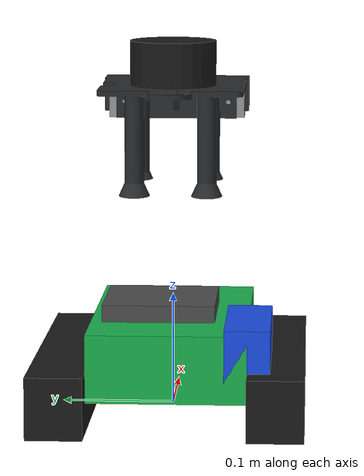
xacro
<?xml version="1.0" ?>
<robot name="jupiter_rover" xmlns:xacro="http://www.ros.org/wiki/xacro">

  <xacro:arg name="lidar_mount_h" default="0.290"/>
  <xacro:arg name="deck_x"        default="0.000"/>
  <xacro:arg name="deck_y"        default="0.000"/>
  <xacro:arg name="lidar_yaw"     default="3.14159265"/>

  <xacro:property name="base_z"      value="0.025"/>
  <xacro:property name="deck_t"      value="0.005"/>
  <xacro:property name="scan_above"  value="0.0208"/>
  <xacro:property name="lidar_mount_h" value="$(arg lidar_mount_h)"/>
  <xacro:property name="deck_bottom" value="${lidar_mount_h - deck_t}"/>
  <xacro:property name="deck_x"      value="$(arg deck_x)"/>
  <xacro:property name="deck_y"      value="$(arg deck_y)"/>
  <!-- 데크 원점 기준 센서 오프셋 (CAD + Intel xacro 확정값) -->
  <xacro:property name="lidar_dz"    value="${deck_t + scan_above}"/>
  <xacro:property name="cam_dx"      value="0.0822"/>
  <xacro:property name="cam_dy"      value="0.0475"/>
  <xacro:property name="cam_dz"      value="-0.0165"/>

  <material name="green"><color rgba="0.1 0.7 0.3 1.0"/></material>
  <material name="black"><color rgba="0.1 0.1 0.1 1.0"/></material>
  <material name="blue"><color rgba="0.1 0.3 0.9 1.0"/></material>
  <material name="grey"><color rgba="0.6 0.6 0.6 1.0"/></material>
  <material name="dark_grey"><color rgba="0.3 0.3 0.3 1.0"/></material>
  <material name="petg"><color rgba="0.16 0.17 0.18 1.0"/></material>

  <link name="base_footprint"/>

  <joint name="base_joint" type="fixed">
    <parent link="base_footprint"/>
    <child link="base_link"/>
    <origin xyz="0 0 ${base_z}" rpy="0 0 0"/>
  </joint>

  <link name="base_link">
    <visual>
      <origin xyz="0 0 0.03" rpy="0 0 0"/>
      <geometry><box size="0.24 0.14 0.06"/></geometry>
      <material name="green"/>
    </visual>
    <collision>
      <origin xyz="0 0 0.03" rpy="0 0 0"/>
      <geometry><box size="0.24 0.14 0.06"/></geometry>
    </collision>
    <inertial>
      <mass value="3.0"/>
      <origin xyz="0 0 0" rpy="0 0 0"/>
      <inertia ixx="0.01" ixy="0.0" ixz="0.0" iyy="0.01" iyz="0.0" izz="0.01"/>
    </inertial>
    <!-- 센서 데크 (FUSED_ROVER STL, mm → m), 데크 프레임 원점에 배치 -->
    <visual>
      <origin xyz="${deck_x} ${deck_y} ${deck_bottom - base_z}" rpy="0 0 0"/>
      <geometry><mesh filename="package://rover_description/meshes/sensor_deck.stl" scale="0.001 0.001 0.001"/></geometry>
      <material name="petg"/>
    </visual>
  </link>

  <link name="left_track">
    <visual><origin xyz="0 0 0" rpy="0 0 0"/><geometry><box size="0.29 0.05 0.055"/></geometry><material name="black"/></visual>
    <collision><origin xyz="0 0 0" rpy="0 0 0"/><geometry><box size="0.29 0.05 0.055"/></geometry></collision>
  </link>
  <joint name="left_track_joint" type="continuous">
    <parent link="base_link"/><child link="left_track"/>
    <origin xyz="0 0.095 0" rpy="0 0 0"/><axis xyz="0 1 0"/>
  </joint>

  <link name="right_track">
    <visual><origin xyz="0 0 0" rpy="0 0 0"/><geometry><box size="0.29 0.05 0.055"/></geometry><material name="black"/></visual>
    <collision><origin xyz="0 0 0" rpy="0 0 0"/><geometry><box size="0.29 0.05 0.055"/></geometry></collision>
  </link>
  <joint name="right_track_joint" type="continuous">
    <parent link="base_link"/><child link="right_track"/>
    <origin xyz="0 -0.095 0" rpy="0 0 0"/><axis xyz="0 1 0"/>
  </joint>

  <!-- ===== LiDAR (RPLidar S2L) — 스캔면 중심 ===== -->
  <link name="lidar_link">
    <visual>
      <origin xyz="0 0 ${-scan_above + 0.0199}" rpy="0 0 0"/>
      <geometry><cylinder radius="0.0385" length="0.0398"/></geometry>
      <material name="black"/>
    </visual>
  </link>
  <joint name="lidar_joint" type="fixed">
    <parent link="base_link"/><child link="lidar_link"/>
    <origin xyz="${deck_x} ${deck_y} ${deck_bottom - base_z + lidar_dz}" rpy="0 0 $(arg lidar_yaw)"/>
  </joint>

  <!-- ===== RealSense D455f — camera_link = 좌이미저 (드라이버가 하위 optical/imu 프레임 발행) ===== -->
  <link name="camera_link">
    <visual>
      <origin xyz="-0.0112 -0.0475 0" rpy="0 0 0"/>
      <geometry><box size="0.026 0.124 0.029"/></geometry>
      <material name="grey"/>
    </visual>
  </link>
  <joint name="camera_joint" type="fixed">
    <parent link="base_link"/><child link="camera_link"/>
    <origin xyz="${deck_x + cam_dx} ${deck_y + cam_dy} ${deck_bottom - base_z + cam_dz}" rpy="0 0 0"/>
  </joint>

  <!-- 보드 IMU 프레임 (펌웨어 /imu/data_raw frame_id) — 자이로 무반응 판정으로 미융합, TF 존재만 유지 -->
  <link name="imu_link"/>
  <joint name="imu_joint" type="fixed">
    <parent link="base_link"/><child link="imu_link"/>
    <origin xyz="-0.01 0.01 0.08" rpy="0 0 0"/>
  </joint>

  <link name="battery_link">
    <visual><origin xyz="0 0 0" rpy="0 0 0"/><geometry><box size="0.12 0.04 0.05"/></geometry><material name="blue"/></visual>
  </link>
  <joint name="battery_joint" type="fixed">
    <parent link="base_link"/><child link="battery_link"/>
    <origin xyz="-0.06 -0.07 0.04" rpy="0 0 0"/>
  </joint>

  <link name="computing_board_link">
    <visual><origin xyz="0 0 0" rpy="0 0 0"/><geometry><box size="0.10 0.10 0.03"/></geometry><material name="dark_grey"/></visual>
  </link>
  <joint name="computing_board_joint" type="fixed">
    <parent link="base_link"/><child link="computing_board_link"/>
    <origin xyz="-0.01 0.01 0.06" rpy="0 0 0"/>
  </joint>

</robot>
